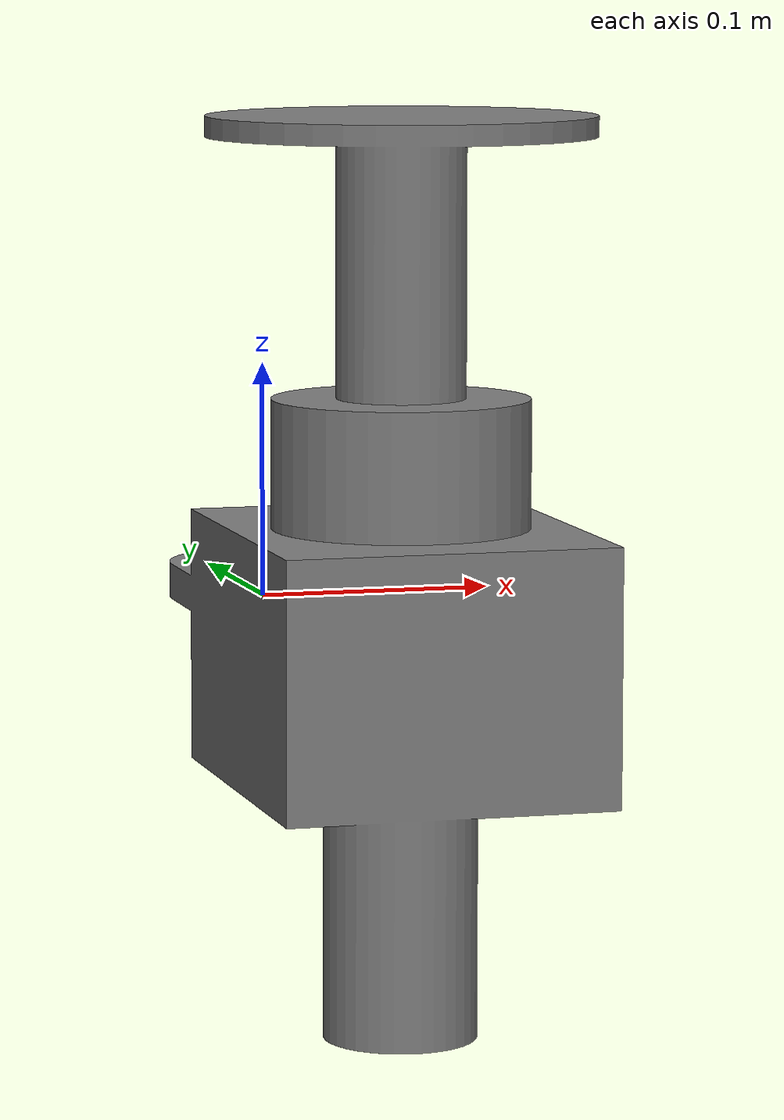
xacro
<?xml version="1.0"?>
<robot name="orbital_sander">
  <link name="tool_origin">
    <visual>
      	<geometry>
          	<mesh filename="package://pct/data/meshes/sander_v1.stl"
                scale="1 1 1"/>
      	</geometry>
	  	<material name="ABS" >
          	<color rgba="0.5 0.5 0.5 1.0" />
         </material>
    	</visual>
  </link>
</robot>
